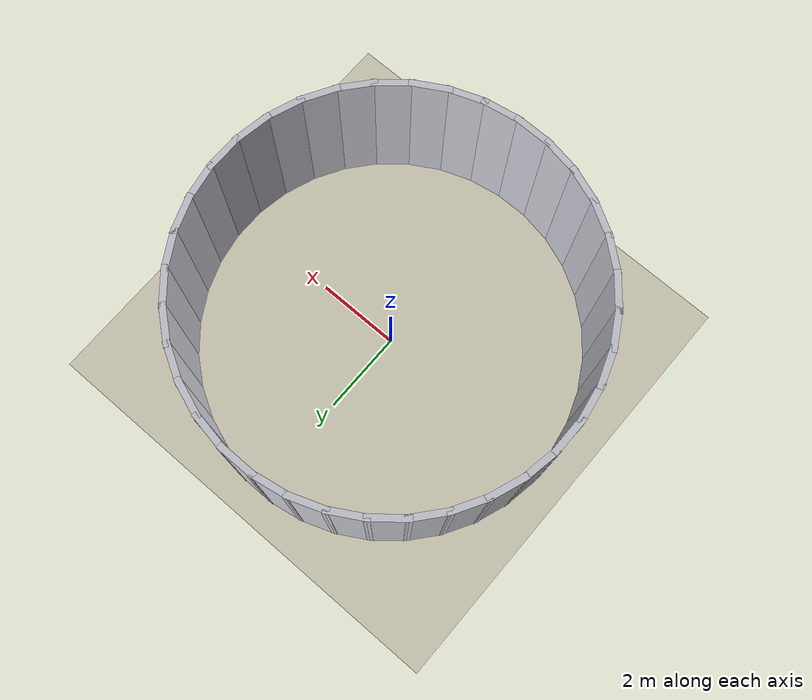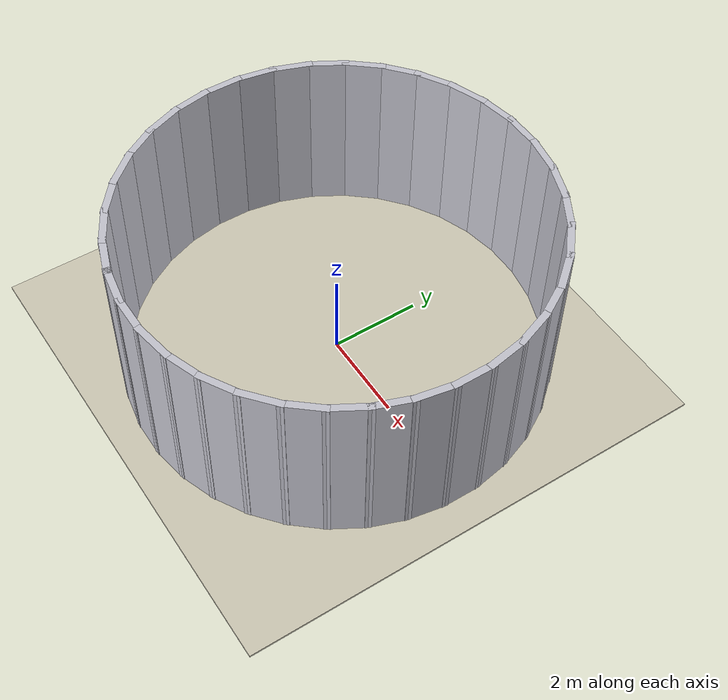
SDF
<sdf version="1.9">
 <world name="p2_circus">
  <physics name="1ms" type="ignored">
   <max_step_size>0.001</max_step_size>
   <real_time_factor>1.0</real_time_factor>
  </physics>
  <plugin filename="gz-sim-physics-system" name="gz::sim::systems::Physics"/>
  <plugin filename="gz-sim-scene-broadcaster-system" name="gz::sim::systems::SceneBroadcaster"/>
  <plugin filename="gz-sim-user-commands-system" name="gz::sim::systems::UserCommands"/>
  <plugin filename="gz-sim-sensors-system" name="gz::sim::systems::Sensors">
   <render_engine>ogre2</render_engine>
  </plugin>
  <plugin filename="gz-sim-imu-system" name="gz::sim::systems::Imu"/>
  <plugin filename="gz-sim-navsat-system" name="gz::sim::systems::NavSat"/>
  <spherical_coordinates>
   <latitude_deg>-35.363262</latitude_deg>
   <longitude_deg>149.165237</longitude_deg>
   <elevation>584</elevation>
   <heading_deg>0</heading_deg>
   <surface_model>EARTH_WGS84</surface_model>
  </spherical_coordinates>
  <light type="directional" name="main_light">
   <cast_shadows>false</cast_shadows>
   <pose>0 0 10 0 0 0</pose>
   <diffuse>1.0 1.0 1.0 1</diffuse>
   <specular>0.5 0.5 0.5 1</specular>
   <direction>0.1 0.1 -1</direction>
  </light>
  <model name="floor">
   <static>true</static>
   <link name="link">
    <collision name="c"><geometry><box><size>10.5 10.5 0.05</size></box></geometry></collision>
    <visual name="v">
     <geometry><box><size>10.5 10.5 0.05</size></box></geometry>
     <material><ambient>0.82 0.80 0.72 1</ambient><diffuse>0.82 0.80 0.72 1</diffuse></material>
    </visual>
   </link>
  </model>
  <model name="wall_00">
   <static>true</static>
   <pose>4.5000 0.0000 2.0000 0 0 1.57080</pose>
   <link name="link">
    <collision name="c"><geometry><box><size>0.9374 0.1500 4.0000</size></box></geometry></collision>
    <visual name="v">
     <geometry><box><size>0.9374 0.1500 4.0000</size></box></geometry>
     <material><ambient>0.78 0.78 0.82 1</ambient><diffuse>0.78 0.78 0.82 1</diffuse></material>
    </visual>
   </link>
  </model>
  <model name="wall_01">
   <static>true</static>
   <pose>4.4316 0.7814 2.0000 0 0 1.74533</pose>
   <link name="link">
    <collision name="c"><geometry><box><size>0.9374 0.1500 4.0000</size></box></geometry></collision>
    <visual name="v">
     <geometry><box><size>0.9374 0.1500 4.0000</size></box></geometry>
     <material><ambient>0.78 0.78 0.82 1</ambient><diffuse>0.78 0.78 0.82 1</diffuse></material>
    </visual>
   </link>
  </model>
  <model name="wall_02">
   <static>true</static>
   <pose>4.2286 1.5391 2.0000 0 0 1.91986</pose>
   <link name="link">
    <collision name="c"><geometry><box><size>0.9374 0.1500 4.0000</size></box></geometry></collision>
    <visual name="v">
     <geometry><box><size>0.9374 0.1500 4.0000</size></box></geometry>
     <material><ambient>0.78 0.78 0.82 1</ambient><diffuse>0.78 0.78 0.82 1</diffuse></material>
    </visual>
   </link>
  </model>
  <model name="wall_03">
   <static>true</static>
   <pose>3.8971 2.2500 2.0000 0 0 2.09440</pose>
   <link name="link">
    <collision name="c"><geometry><box><size>0.9374 0.1500 4.0000</size></box></geometry></collision>
    <visual name="v">
     <geometry><box><size>0.9374 0.1500 4.0000</size></box></geometry>
     <material><ambient>0.78 0.78 0.82 1</ambient><diffuse>0.78 0.78 0.82 1</diffuse></material>
    </visual>
   </link>
  </model>
  <model name="wall_04">
   <static>true</static>
   <pose>3.4472 2.8925 2.0000 0 0 2.26893</pose>
   <link name="link">
    <collision name="c"><geometry><box><size>0.9374 0.1500 4.0000</size></box></geometry></collision>
    <visual name="v">
     <geometry><box><size>0.9374 0.1500 4.0000</size></box></geometry>
     <material><ambient>0.78 0.78 0.82 1</ambient><diffuse>0.78 0.78 0.82 1</diffuse></material>
    </visual>
   </link>
  </model>
  <model name="wall_05">
   <static>true</static>
   <pose>2.8925 3.4472 2.0000 0 0 2.44346</pose>
   <link name="link">
    <collision name="c"><geometry><box><size>0.9374 0.1500 4.0000</size></box></geometry></collision>
    <visual name="v">
     <geometry><box><size>0.9374 0.1500 4.0000</size></box></geometry>
     <material><ambient>0.78 0.78 0.82 1</ambient><diffuse>0.78 0.78 0.82 1</diffuse></material>
    </visual>
   </link>
  </model>
  <model name="wall_06">
   <static>true</static>
   <pose>2.2500 3.8971 2.0000 0 0 2.61799</pose>
   <link name="link">
    <collision name="c"><geometry><box><size>0.9374 0.1500 4.0000</size></box></geometry></collision>
    <visual name="v">
     <geometry><box><size>0.9374 0.1500 4.0000</size></box></geometry>
     <material><ambient>0.78 0.78 0.82 1</ambient><diffuse>0.78 0.78 0.82 1</diffuse></material>
    </visual>
   </link>
  </model>
  <model name="wall_07">
   <static>true</static>
   <pose>1.5391 4.2286 2.0000 0 0 2.79253</pose>
   <link name="link">
    <collision name="c"><geometry><box><size>0.9374 0.1500 4.0000</size></box></geometry></collision>
    <visual name="v">
     <geometry><box><size>0.9374 0.1500 4.0000</size></box></geometry>
     <material><ambient>0.78 0.78 0.82 1</ambient><diffuse>0.78 0.78 0.82 1</diffuse></material>
    </visual>
   </link>
  </model>
  <model name="wall_08">
   <static>true</static>
   <pose>0.7814 4.4316 2.0000 0 0 2.96706</pose>
   <link name="link">
    <collision name="c"><geometry><box><size>0.9374 0.1500 4.0000</size></box></geometry></collision>
    <visual name="v">
     <geometry><box><size>0.9374 0.1500 4.0000</size></box></geometry>
     <material><ambient>0.78 0.78 0.82 1</ambient><diffuse>0.78 0.78 0.82 1</diffuse></material>
    </visual>
   </link>
  </model>
  <model name="wall_09">
   <static>true</static>
   <pose>0.0000 4.5000 2.0000 0 0 3.14159</pose>
   <link name="link">
    <collision name="c"><geometry><box><size>0.9374 0.1500 4.0000</size></box></geometry></collision>
    <visual name="v">
     <geometry><box><size>0.9374 0.1500 4.0000</size></box></geometry>
     <material><ambient>0.78 0.78 0.82 1</ambient><diffuse>0.78 0.78 0.82 1</diffuse></material>
    </visual>
   </link>
  </model>
  <model name="wall_10">
   <static>true</static>
   <pose>-0.7814 4.4316 2.0000 0 0 3.31613</pose>
   <link name="link">
    <collision name="c"><geometry><box><size>0.9374 0.1500 4.0000</size></box></geometry></collision>
    <visual name="v">
     <geometry><box><size>0.9374 0.1500 4.0000</size></box></geometry>
     <material><ambient>0.78 0.78 0.82 1</ambient><diffuse>0.78 0.78 0.82 1</diffuse></material>
    </visual>
   </link>
  </model>
  <model name="wall_11">
   <static>true</static>
   <pose>-1.5391 4.2286 2.0000 0 0 3.49066</pose>
   <link name="link">
    <collision name="c"><geometry><box><size>0.9374 0.1500 4.0000</size></box></geometry></collision>
    <visual name="v">
     <geometry><box><size>0.9374 0.1500 4.0000</size></box></geometry>
     <material><ambient>0.78 0.78 0.82 1</ambient><diffuse>0.78 0.78 0.82 1</diffuse></material>
    </visual>
   </link>
  </model>
  <model name="wall_12">
   <static>true</static>
   <pose>-2.2500 3.8971 2.0000 0 0 3.66519</pose>
   <link name="link">
    <collision name="c"><geometry><box><size>0.9374 0.1500 4.0000</size></box></geometry></collision>
    <visual name="v">
     <geometry><box><size>0.9374 0.1500 4.0000</size></box></geometry>
     <material><ambient>0.78 0.78 0.82 1</ambient><diffuse>0.78 0.78 0.82 1</diffuse></material>
    </visual>
   </link>
  </model>
  <model name="wall_13">
   <static>true</static>
   <pose>-2.8925 3.4472 2.0000 0 0 3.83972</pose>
   <link name="link">
    <collision name="c"><geometry><box><size>0.9374 0.1500 4.0000</size></box></geometry></collision>
    <visual name="v">
     <geometry><box><size>0.9374 0.1500 4.0000</size></box></geometry>
     <material><ambient>0.78 0.78 0.82 1</ambient><diffuse>0.78 0.78 0.82 1</diffuse></material>
    </visual>
   </link>
  </model>
  <model name="wall_14">
   <static>true</static>
   <pose>-3.4472 2.8925 2.0000 0 0 4.01426</pose>
   <link name="link">
    <collision name="c"><geometry><box><size>0.9374 0.1500 4.0000</size></box></geometry></collision>
    <visual name="v">
     <geometry><box><size>0.9374 0.1500 4.0000</size></box></geometry>
     <material><ambient>0.78 0.78 0.82 1</ambient><diffuse>0.78 0.78 0.82 1</diffuse></material>
    </visual>
   </link>
  </model>
  <model name="wall_15">
   <static>true</static>
   <pose>-3.8971 2.2500 2.0000 0 0 4.18879</pose>
   <link name="link">
    <collision name="c"><geometry><box><size>0.9374 0.1500 4.0000</size></box></geometry></collision>
    <visual name="v">
     <geometry><box><size>0.9374 0.1500 4.0000</size></box></geometry>
     <material><ambient>0.78 0.78 0.82 1</ambient><diffuse>0.78 0.78 0.82 1</diffuse></material>
    </visual>
   </link>
  </model>
  <model name="wall_16">
   <static>true</static>
   <pose>-4.2286 1.5391 2.0000 0 0 4.36332</pose>
   <link name="link">
    <collision name="c"><geometry><box><size>0.9374 0.1500 4.0000</size></box></geometry></collision>
    <visual name="v">
     <geometry><box><size>0.9374 0.1500 4.0000</size></box></geometry>
     <material><ambient>0.78 0.78 0.82 1</ambient><diffuse>0.78 0.78 0.82 1</diffuse></material>
    </visual>
   </link>
  </model>
  <model name="wall_17">
   <static>true</static>
   <pose>-4.4316 0.7814 2.0000 0 0 4.53786</pose>
   <link name="link">
    <collision name="c"><geometry><box><size>0.9374 0.1500 4.0000</size></box></geometry></collision>
    <visual name="v">
     <geometry><box><size>0.9374 0.1500 4.0000</size></box></geometry>
     <material><ambient>0.78 0.78 0.82 1</ambient><diffuse>0.78 0.78 0.82 1</diffuse></material>
    </visual>
   </link>
  </model>
  <model name="wall_18">
   <static>true</static>
   <pose>-4.5000 0.0000 2.0000 0 0 4.71239</pose>
   <link name="link">
    <collision name="c"><geometry><box><size>0.9374 0.1500 4.0000</size></box></geometry></collision>
    <visual name="v">
     <geometry><box><size>0.9374 0.1500 4.0000</size></box></geometry>
     <material><ambient>0.78 0.78 0.82 1</ambient><diffuse>0.78 0.78 0.82 1</diffuse></material>
    </visual>
   </link>
  </model>
  <model name="wall_19">
   <static>true</static>
   <pose>-4.4316 -0.7814 2.0000 0 0 4.88692</pose>
   <link name="link">
    <collision name="c"><geometry><box><size>0.9374 0.1500 4.0000</size></box></geometry></collision>
    <visual name="v">
     <geometry><box><size>0.9374 0.1500 4.0000</size></box></geometry>
     <material><ambient>0.78 0.78 0.82 1</ambient><diffuse>0.78 0.78 0.82 1</diffuse></material>
    </visual>
   </link>
  </model>
  <model name="wall_20">
   <static>true</static>
   <pose>-4.2286 -1.5391 2.0000 0 0 5.06145</pose>
   <link name="link">
    <collision name="c"><geometry><box><size>0.9374 0.1500 4.0000</size></box></geometry></collision>
    <visual name="v">
     <geometry><box><size>0.9374 0.1500 4.0000</size></box></geometry>
     <material><ambient>0.78 0.78 0.82 1</ambient><diffuse>0.78 0.78 0.82 1</diffuse></material>
    </visual>
   </link>
  </model>
  <model name="wall_21">
   <static>true</static>
   <pose>-3.8971 -2.2500 2.0000 0 0 5.23599</pose>
   <link name="link">
    <collision name="c"><geometry><box><size>0.9374 0.1500 4.0000</size></box></geometry></collision>
    <visual name="v">
     <geometry><box><size>0.9374 0.1500 4.0000</size></box></geometry>
     <material><ambient>0.78 0.78 0.82 1</ambient><diffuse>0.78 0.78 0.82 1</diffuse></material>
    </visual>
   </link>
  </model>
  <model name="wall_22">
   <static>true</static>
   <pose>-3.4472 -2.8925 2.0000 0 0 5.41052</pose>
   <link name="link">
    <collision name="c"><geometry><box><size>0.9374 0.1500 4.0000</size></box></geometry></collision>
    <visual name="v">
     <geometry><box><size>0.9374 0.1500 4.0000</size></box></geometry>
     <material><ambient>0.78 0.78 0.82 1</ambient><diffuse>0.78 0.78 0.82 1</diffuse></material>
    </visual>
   </link>
  </model>
  <model name="wall_23">
   <static>true</static>
   <pose>-2.8925 -3.4472 2.0000 0 0 5.58505</pose>
   <link name="link">
    <collision name="c"><geometry><box><size>0.9374 0.1500 4.0000</size></box></geometry></collision>
    <visual name="v">
     <geometry><box><size>0.9374 0.1500 4.0000</size></box></geometry>
     <material><ambient>0.78 0.78 0.82 1</ambient><diffuse>0.78 0.78 0.82 1</diffuse></material>
    </visual>
   </link>
  </model>
  <model name="wall_24">
   <static>true</static>
   <pose>-2.2500 -3.8971 2.0000 0 0 5.75959</pose>
   <link name="link">
    <collision name="c"><geometry><box><size>0.9374 0.1500 4.0000</size></box></geometry></collision>
    <visual name="v">
     <geometry><box><size>0.9374 0.1500 4.0000</size></box></geometry>
     <material><ambient>0.78 0.78 0.82 1</ambient><diffuse>0.78 0.78 0.82 1</diffuse></material>
    </visual>
   </link>
  </model>
  <model name="wall_25">
   <static>true</static>
   <pose>-1.5391 -4.2286 2.0000 0 0 5.93412</pose>
   <link name="link">
    <collision name="c"><geometry><box><size>0.9374 0.1500 4.0000</size></box></geometry></collision>
    <visual name="v">
     <geometry><box><size>0.9374 0.1500 4.0000</size></box></geometry>
     <material><ambient>0.78 0.78 0.82 1</ambient><diffuse>0.78 0.78 0.82 1</diffuse></material>
    </visual>
   </link>
  </model>
  <model name="wall_26">
   <static>true</static>
   <pose>-0.7814 -4.4316 2.0000 0 0 6.10865</pose>
   <link name="link">
    <collision name="c"><geometry><box><size>0.9374 0.1500 4.0000</size></box></geometry></collision>
    <visual name="v">
     <geometry><box><size>0.9374 0.1500 4.0000</size></box></geometry>
     <material><ambient>0.78 0.78 0.82 1</ambient><diffuse>0.78 0.78 0.82 1</diffuse></material>
    </visual>
   </link>
  </model>
  <model name="wall_27">
   <static>true</static>
   <pose>-0.0000 -4.5000 2.0000 0 0 6.28319</pose>
   <link name="link">
    <collision name="c"><geometry><box><size>0.9374 0.1500 4.0000</size></box></geometry></collision>
    <visual name="v">
     <geometry><box><size>0.9374 0.1500 4.0000</size></box></geometry>
     <material><ambient>0.78 0.78 0.82 1</ambient><diffuse>0.78 0.78 0.82 1</diffuse></material>
    </visual>
   </link>
  </model>
  <model name="wall_28">
   <static>true</static>
   <pose>0.7814 -4.4316 2.0000 0 0 6.45772</pose>
   <link name="link">
    <collision name="c"><geometry><box><size>0.9374 0.1500 4.0000</size></box></geometry></collision>
    <visual name="v">
     <geometry><box><size>0.9374 0.1500 4.0000</size></box></geometry>
     <material><ambient>0.78 0.78 0.82 1</ambient><diffuse>0.78 0.78 0.82 1</diffuse></material>
    </visual>
   </link>
  </model>
  <model name="wall_29">
   <static>true</static>
   <pose>1.5391 -4.2286 2.0000 0 0 6.63225</pose>
   <link name="link">
    <collision name="c"><geometry><box><size>0.9374 0.1500 4.0000</size></box></geometry></collision>
    <visual name="v">
     <geometry><box><size>0.9374 0.1500 4.0000</size></box></geometry>
     <material><ambient>0.78 0.78 0.82 1</ambient><diffuse>0.78 0.78 0.82 1</diffuse></material>
    </visual>
   </link>
  </model>
  <model name="wall_30">
   <static>true</static>
   <pose>2.2500 -3.8971 2.0000 0 0 6.80678</pose>
   <link name="link">
    <collision name="c"><geometry><box><size>0.9374 0.1500 4.0000</size></box></geometry></collision>
    <visual name="v">
     <geometry><box><size>0.9374 0.1500 4.0000</size></box></geometry>
     <material><ambient>0.78 0.78 0.82 1</ambient><diffuse>0.78 0.78 0.82 1</diffuse></material>
    </visual>
   </link>
  </model>
  <model name="wall_31">
   <static>true</static>
   <pose>2.8925 -3.4472 2.0000 0 0 6.98132</pose>
   <link name="link">
    <collision name="c"><geometry><box><size>0.9374 0.1500 4.0000</size></box></geometry></collision>
    <visual name="v">
     <geometry><box><size>0.9374 0.1500 4.0000</size></box></geometry>
     <material><ambient>0.78 0.78 0.82 1</ambient><diffuse>0.78 0.78 0.82 1</diffuse></material>
    </visual>
   </link>
  </model>
  <model name="wall_32">
   <static>true</static>
   <pose>3.4472 -2.8925 2.0000 0 0 7.15585</pose>
   <link name="link">
    <collision name="c"><geometry><box><size>0.9374 0.1500 4.0000</size></box></geometry></collision>
    <visual name="v">
     <geometry><box><size>0.9374 0.1500 4.0000</size></box></geometry>
     <material><ambient>0.78 0.78 0.82 1</ambient><diffuse>0.78 0.78 0.82 1</diffuse></material>
    </visual>
   </link>
  </model>
  <model name="wall_33">
   <static>true</static>
   <pose>3.8971 -2.2500 2.0000 0 0 7.33038</pose>
   <link name="link">
    <collision name="c"><geometry><box><size>0.9374 0.1500 4.0000</size></box></geometry></collision>
    <visual name="v">
     <geometry><box><size>0.9374 0.1500 4.0000</size></box></geometry>
     <material><ambient>0.78 0.78 0.82 1</ambient><diffuse>0.78 0.78 0.82 1</diffuse></material>
    </visual>
   </link>
  </model>
  <model name="wall_34">
   <static>true</static>
   <pose>4.2286 -1.5391 2.0000 0 0 7.50492</pose>
   <link name="link">
    <collision name="c"><geometry><box><size>0.9374 0.1500 4.0000</size></box></geometry></collision>
    <visual name="v">
     <geometry><box><size>0.9374 0.1500 4.0000</size></box></geometry>
     <material><ambient>0.78 0.78 0.82 1</ambient><diffuse>0.78 0.78 0.82 1</diffuse></material>
    </visual>
   </link>
  </model>
  <model name="wall_35">
   <static>true</static>
   <pose>4.4316 -0.7814 2.0000 0 0 7.67945</pose>
   <link name="link">
    <collision name="c"><geometry><box><size>0.9374 0.1500 4.0000</size></box></geometry></collision>
    <visual name="v">
     <geometry><box><size>0.9374 0.1500 4.0000</size></box></geometry>
     <material><ambient>0.78 0.78 0.82 1</ambient><diffuse>0.78 0.78 0.82 1</diffuse></material>
    </visual>
   </link>
  </model>
 </world>
</sdf>
